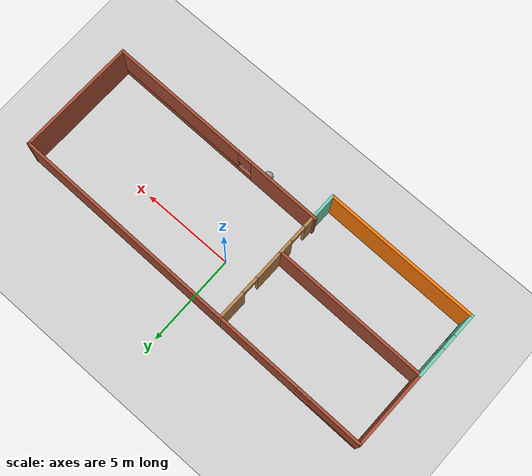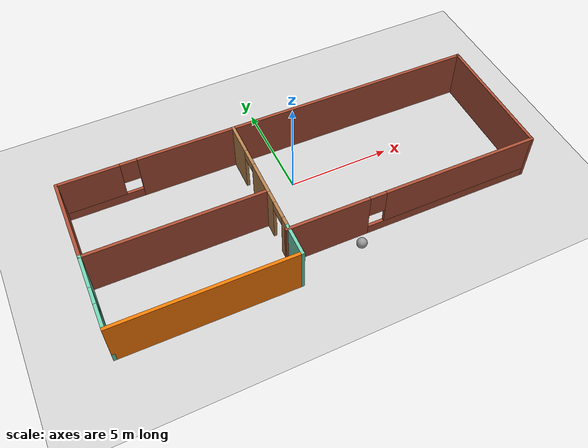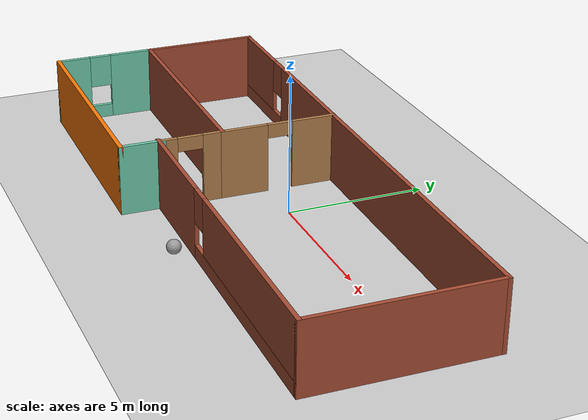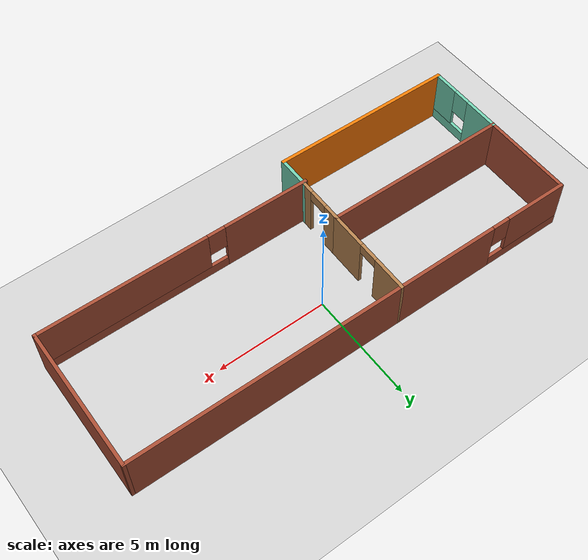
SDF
<sdf version="1.6">
 <world name="default">
  <plugin name="welcome" filename="libwelcome.so"/>
  <light name="sun" type="directional">
   <pose>0 0 10 0 -0 0</pose>
   <diffuse>0.8 0.8 0.8 1</diffuse>
   <specular>0.2 0.2 0.2 1</specular>
   <attenuation>
    <range>1000</range>
    <constant>0.9</constant>
    <linear>0.01</linear>
    <quadratic>0.001</quadratic>
   </attenuation>
   <direction>-0.5 0.1 -0.9</direction>
  </light>
  <model name="ground_plane">
   <static>1</static>
   <link name="link">
    <collision name="collision">
     <geometry><plane><normal>0 0 1</normal><size>100 100</size></plane></geometry>
     <surface><friction><ode><mu>100</mu><mu2>50</mu2></ode></friction></surface>
    </collision>
    <visual name="visual">
     <cast_shadows>0</cast_shadows>
     <geometry><plane><normal>0 0 1</normal><size>100 100</size></plane></geometry>
     <material>
      <script><uri>file://media/materials/scripts/gazebo.material</uri><name>Gazebo/Grey</name></script>
     </material>
    </visual>
   </link>
  </model>
  <gravity>0 0 -9.8</gravity>
  <magnetic_field>6e-06 2.3e-05 -4.2e-05</magnetic_field>
  <atmosphere type="adiabatic"/>
  <physics name="default_physics" default="0" type="ode">
   <max_step_size>0.001</max_step_size>
   <real_time_factor>1</real_time_factor>
   <real_time_update_rate>1000</real_time_update_rate>
  </physics>
  <scene><ambient>0.4 0.4 0.4 1</ambient><background>0.7 0.7 0.7 1</background><shadows>1</shadows></scene>
  <spherical_coordinates>
   <surface_model>EARTH_WGS84</surface_model>
   <latitude_deg>0</latitude_deg>
   <longitude_deg>0</longitude_deg>
   <elevation>0</elevation>
   <heading_deg>0</heading_deg>
  </spherical_coordinates>
  <model name="udacity_world">
   <pose>-0.007081 -1.42684 0 0 0 -0.014409</pose>
   <link name="Wall_0">
    <pose>4.125 -2.5 0 0 -0 0</pose>
    <visual name="Wall_0_Visual_0">
     <pose>-4.23936 0 1.25 0 -0 0</pose>
     <geometry><box><size>4.02128 0.15 2.5</size></box></geometry>
     <material>
      <script><uri>file://media/materials/scripts/gazebo.material</uri><name>Gazebo/Bricks</name></script>
      <ambient>1 1 1 1</ambient>
     </material>
     <meta><layer>0</layer></meta>
    </visual>
    <collision name="Wall_0_Collision_0">
     <geometry><box><size>4.02128 0.15 2.5</size></box></geometry>
     <pose>-4.23936 0 1.25 0 -0 0</pose>
    </collision>
    <visual name="Wall_0_Visual_1">
     <pose>2.01064 0 0.25 0 -0 0</pose>
     <geometry><box><size>8.47872 0.15 0.5</size></box></geometry>
     <material>
      <script><uri>file://media/materials/scripts/gazebo.material</uri><name>Gazebo/Bricks</name></script>
      <ambient>1 1 1 1</ambient>
     </material>
     <meta><layer>0</layer></meta>
    </visual>
    <collision name="Wall_0_Collision_1">
     <geometry><box><size>8.47872 0.15 0.5</size></box></geometry>
     <pose>2.01064 0 0.25 0 -0 0</pose>
    </collision>
    <visual name="Wall_0_Visual_2">
     <pose>2.41064 0 1.5 0 -0 0</pose>
     <geometry><box><size>7.67872 0.15 2</size></box></geometry>
     <material>
      <script><uri>file://media/materials/scripts/gazebo.material</uri><name>Gazebo/Bricks</name></script>
      <ambient>1 1 1 1</ambient>
     </material>
     <meta><layer>0</layer></meta>
    </visual>
    <collision name="Wall_0_Collision_2">
     <geometry><box><size>7.67872 0.15 2</size></box></geometry>
     <pose>2.41064 0 1.5 0 -0 0</pose>
    </collision>
    <visual name="Wall_0_Visual_3">
     <pose>-1.82872 0 1.9 0 -0 0</pose>
     <geometry><box><size>0.8 0.15 1.2</size></box></geometry>
     <material>
      <script><uri>file://media/materials/scripts/gazebo.material</uri><name>Gazebo/Bricks</name></script>
      <ambient>1 1 1 1</ambient>
     </material>
     <meta><layer>0</layer></meta>
    </visual>
    <collision name="Wall_0_Collision_3">
     <geometry><box><size>0.8 0.15 1.2</size></box></geometry>
     <pose>-1.82872 0 1.9 0 -0 0</pose>
    </collision>
   </link>
   <link name="Wall_1">
    <collision name="Wall_1_Collision">
     <geometry><box><size>6.5 0.15 2.5</size></box></geometry>
     <pose>0 0 1.25 0 -0 0</pose>
    </collision>
    <visual name="Wall_1_Visual">
     <pose>0 0 1.25 0 -0 0</pose>
     <geometry><box><size>6.5 0.15 2.5</size></box></geometry>
     <material>
      <script><uri>file://media/materials/scripts/gazebo.material</uri><name>Gazebo/Bricks</name></script>
      <ambient>1 1 1 1</ambient>
     </material>
     <meta><layer>0</layer></meta>
    </visual>
    <pose>10.3 0.675 0 0 -0 1.5708</pose>
   </link>
   <link name="Wall_10">
    <collision name="Wall_10_Collision">
     <geometry><box><size>8.5 0.15 2.5</size></box></geometry>
     <pose>0 0 1.25 0 -0 0</pose>
    </collision>
    <visual name="Wall_10_Visual">
     <pose>0 0 1.25 0 -0 0</pose>
     <geometry><box><size>8.5 0.15 2.5</size></box></geometry>
     <material>
      <script><uri>file://media/materials/scripts/gazebo.material</uri><name>Gazebo/Grey</name></script>
      <ambient>0.996078 0.47451 0.0196078 1</ambient>
     </material>
     <meta><layer>0</layer></meta>
    </visual>
    <pose>-6.125 -3.85 0 0 -0 0</pose>
   </link>
   <link name="Wall_11">
    <collision name="Wall_11_Collision">
     <geometry><box><size>1.65 0.15 2.5</size></box></geometry>
     <pose>0 0 1.25 0 -0 0</pose>
    </collision>
    <visual name="Wall_11_Visual">
     <pose>0 0 1.25 0 -0 0</pose>
     <geometry><box><size>1.65 0.15 2.5</size></box></geometry>
     <material>
      <script><uri>file://media/materials/scripts/gazebo.material</uri><name>Gazebo/Grey</name></script>
      <ambient>0.435294 0.796078 0.67451 1</ambient>
     </material>
     <meta><layer>0</layer></meta>
    </visual>
    <pose>-1.95 -3.1 0 0 -0 1.5708</pose>
   </link>
   <link name="Wall_2">
    <pose>0 3.85 0 0 -0 3.14159</pose>
    <visual name="Wall_2_Visual_0">
     <pose>-1.87482 0 1.25 0 -0 0</pose>
     <geometry><box><size>17.0004 0.15 2.5</size></box></geometry>
     <material>
      <script><uri>file://media/materials/scripts/gazebo.material</uri><name>Gazebo/Bricks</name></script>
      <ambient>1 1 1 1</ambient>
     </material>
     <meta><layer>0</layer></meta>
    </visual>
    <collision name="Wall_2_Collision_0">
     <geometry><box><size>17.0004 0.15 2.5</size></box></geometry>
     <pose>-1.87482 0 1.25 0 -0 0</pose>
    </collision>
    <visual name="Wall_2_Visual_1">
     <pose>8.50018 0 0.25 0 -0 0</pose>
     <geometry><box><size>3.74964 0.15 0.5</size></box></geometry>
     <material>
      <script><uri>file://media/materials/scripts/gazebo.material</uri><name>Gazebo/Bricks</name></script>
      <ambient>1 1 1 1</ambient>
     </material>
     <meta><layer>0</layer></meta>
    </visual>
    <collision name="Wall_2_Collision_1">
     <geometry><box><size>3.74964 0.15 0.5</size></box></geometry>
     <pose>8.50018 0 0.25 0 -0 0</pose>
    </collision>
    <visual name="Wall_2_Visual_2">
     <pose>8.90018 0 1.5 0 -0 0</pose>
     <geometry><box><size>2.94964 0.15 2</size></box></geometry>
     <material>
      <script><uri>file://media/materials/scripts/gazebo.material</uri><name>Gazebo/Bricks</name></script>
      <ambient>1 1 1 1</ambient>
     </material>
     <meta><layer>0</layer></meta>
    </visual>
    <collision name="Wall_2_Collision_2">
     <geometry><box><size>2.94964 0.15 2</size></box></geometry>
     <pose>8.90018 0 1.5 0 -0 0</pose>
    </collision>
    <visual name="Wall_2_Visual_3">
     <pose>7.02536 0 1.9 0 -0 0</pose>
     <geometry><box><size>0.8 0.15 1.2</size></box></geometry>
     <material>
      <script><uri>file://media/materials/scripts/gazebo.material</uri><name>Gazebo/Bricks</name></script>
      <ambient>1 1 1 1</ambient>
     </material>
     <meta><layer>0</layer></meta>
    </visual>
    <collision name="Wall_2_Collision_3">
     <geometry><box><size>0.8 0.15 1.2</size></box></geometry>
     <pose>7.02536 0 1.9 0 -0 0</pose>
    </collision>
   </link>
   <link name="Wall_3">
    <collision name="Wall_3_Collision">
     <geometry><box><size>4.25 0.15 2.5</size></box></geometry>
     <pose>0 0 1.25 0 -0 0</pose>
    </collision>
    <visual name="Wall_3_Visual">
     <pose>0 0 1.25 0 -0 0</pose>
     <geometry><box><size>4.25 0.15 2.5</size></box></geometry>
     <material>
      <script><uri>file://media/materials/scripts/gazebo.material</uri><name>Gazebo/Bricks</name></script>
      <ambient>1 1 1 1</ambient>
     </material>
     <meta><layer>0</layer></meta>
    </visual>
    <pose>-10.3 1.8 0 0 0 -1.5708</pose>
   </link>
   <link name="Wall_4">
    <collision name="Wall_4_Collision">
     <geometry><box><size>8.5 0.15 2.5</size></box></geometry>
     <pose>0 0 1.25 0 -0 0</pose>
    </collision>
    <visual name="Wall_4_Visual">
     <pose>0 0 1.25 0 -0 0</pose>
     <geometry><box><size>8.5 0.15 2.5</size></box></geometry>
     <material>
      <script><uri>file://media/materials/scripts/gazebo.material</uri><name>Gazebo/Bricks</name></script>
      <ambient>1 1 1 1</ambient>
     </material>
     <meta><layer>0</layer></meta>
    </visual>
    <pose>-6.125 -0.25 0 0 -0 0</pose>
   </link>
   <link name="Wall_5">
    <pose>-1.95 -1.3 0 0 0 -1.5708</pose>
    <visual name="Wall_5_Visual_0">
     <pose>-0.729519 0 1.25 0 -0 0</pose>
     <geometry><box><size>0.790962 0.15 2.5</size></box></geometry>
     <material>
      <script><uri>file://media/materials/scripts/gazebo.material</uri><name>Gazebo/Wood</name></script>
      <ambient>0.435294 0.796078 0.67451 1</ambient>
     </material>
     <meta><layer>0</layer></meta>
    </visual>
    <collision name="Wall_5_Collision_0">
     <geometry><box><size>0.790962 0.15 2.5</size></box></geometry>
     <pose>-0.729519 0 1.25 0 -0 0</pose>
    </collision>
    <visual name="Wall_5_Visual_1">
     <pose>0.845481 0 1.25 0 -0 0</pose>
     <geometry><box><size>0.559038 0.15 2.5</size></box></geometry>
     <material>
      <script><uri>file://media/materials/scripts/gazebo.material</uri><name>Gazebo/Wood</name></script>
      <ambient>0.435294 0.796078 0.67451 1</ambient>
     </material>
     <meta><layer>0</layer></meta>
    </visual>
    <collision name="Wall_5_Collision_1">
     <geometry><box><size>0.559038 0.15 2.5</size></box></geometry>
     <pose>0.845481 0 1.25 0 -0 0</pose>
    </collision>
    <visual name="Wall_5_Visual_2">
     <pose>0.115962 0 2.25 0 -0 0</pose>
     <geometry><box><size>0.9 0.15 0.5</size></box></geometry>
     <material>
      <script><uri>file://media/materials/scripts/gazebo.material</uri><name>Gazebo/Wood</name></script>
      <ambient>0.435294 0.796078 0.67451 1</ambient>
     </material>
     <meta><layer>0</layer></meta>
    </visual>
    <collision name="Wall_5_Collision_2">
     <geometry><box><size>0.9 0.15 0.5</size></box></geometry>
     <pose>0.115962 0 2.25 0 -0 0</pose>
    </collision>
   </link>
   <link name="Wall_7">
    <pose>-1.95 1.8 0 0 -0 1.5708</pose>
    <visual name="Wall_7_Visual_0">
     <pose>-1.26477 0 1.25 0 -0 0</pose>
     <geometry><box><size>1.72045 0.15 2.5</size></box></geometry>
     <material>
      <script><uri>file://media/materials/scripts/gazebo.material</uri><name>Gazebo/Wood</name></script>
      <ambient>0.435294 0.796078 0.67451 1</ambient>
     </material>
     <meta><layer>0</layer></meta>
    </visual>
    <collision name="Wall_7_Collision_0">
     <geometry><box><size>1.72045 0.15 2.5</size></box></geometry>
     <pose>-1.26477 0 1.25 0 -0 0</pose>
    </collision>
    <visual name="Wall_7_Visual_1">
     <pose>1.31023 0 1.25 0 -0 0</pose>
     <geometry><box><size>1.62955 0.15 2.5</size></box></geometry>
     <material>
      <script><uri>file://media/materials/scripts/gazebo.material</uri><name>Gazebo/Wood</name></script>
      <ambient>0.435294 0.796078 0.67451 1</ambient>
     </material>
     <meta><layer>0</layer></meta>
    </visual>
    <collision name="Wall_7_Collision_1">
     <geometry><box><size>1.62955 0.15 2.5</size></box></geometry>
     <pose>1.31023 0 1.25 0 -0 0</pose>
    </collision>
    <visual name="Wall_7_Visual_2">
     <pose>0.045453 0 2.25 0 -0 0</pose>
     <geometry><box><size>0.9 0.15 0.5</size></box></geometry>
     <material>
      <script><uri>file://media/materials/scripts/gazebo.material</uri><name>Gazebo/Wood</name></script>
      <ambient>0.435294 0.796078 0.67451 1</ambient>
     </material>
     <meta><layer>0</layer></meta>
    </visual>
    <collision name="Wall_7_Collision_2">
     <geometry><box><size>0.9 0.15 0.5</size></box></geometry>
     <pose>0.045453 0 2.25 0 -0 0</pose>
    </collision>
   </link>
   <link name="Wall_9">
    <pose>-10.3 -2.05 0 0 0 -1.5708</pose>
    <visual name="Wall_9_Visual_0">
     <pose>-1.03817 0 1.25 0 -0 0</pose>
     <geometry><box><size>1.67366 0.15 2.5</size></box></geometry>
     <material>
      <script><uri>file://media/materials/scripts/gazebo.material</uri><name>Gazebo/Grey</name></script>
      <ambient>0.435294 0.796078 0.67451 1</ambient>
     </material>
     <meta><layer>0</layer></meta>
    </visual>
    <collision name="Wall_9_Collision_0">
     <geometry><box><size>1.67366 0.15 2.5</size></box></geometry>
     <pose>-1.03817 0 1.25 0 -0 0</pose>
    </collision>
    <visual name="Wall_9_Visual_1">
     <pose>0.836832 0 0.25 0 -0 0</pose>
     <geometry><box><size>2.07634 0.15 0.5</size></box></geometry>
     <material>
      <script><uri>file://media/materials/scripts/gazebo.material</uri><name>Gazebo/Grey</name></script>
      <ambient>0.435294 0.796078 0.67451 1</ambient>
     </material>
     <meta><layer>0</layer></meta>
    </visual>
    <collision name="Wall_9_Collision_1">
     <geometry><box><size>2.07634 0.15 0.5</size></box></geometry>
     <pose>0.836832 0 0.25 0 -0 0</pose>
    </collision>
    <visual name="Wall_9_Visual_2">
     <pose>1.23683 0 1.5 0 -0 0</pose>
     <geometry><box><size>1.27634 0.15 2</size></box></geometry>
     <material>
      <script><uri>file://media/materials/scripts/gazebo.material</uri><name>Gazebo/Grey</name></script>
      <ambient>0.435294 0.796078 0.67451 1</ambient>
     </material>
     <meta><layer>0</layer></meta>
    </visual>
    <collision name="Wall_9_Collision_2">
     <geometry><box><size>1.27634 0.15 2</size></box></geometry>
     <pose>1.23683 0 1.5 0 -0 0</pose>
    </collision>
    <visual name="Wall_9_Visual_3">
     <pose>0.198664 0 1.9 0 -0 0</pose>
     <geometry><box><size>0.8 0.15 1.2</size></box></geometry>
     <material>
      <script><uri>file://media/materials/scripts/gazebo.material</uri><name>Gazebo/Grey</name></script>
      <ambient>0.435294 0.796078 0.67451 1</ambient>
     </material>
     <meta><layer>0</layer></meta>
    </visual>
    <collision name="Wall_9_Collision_3">
     <geometry><box><size>0.8 0.15 1.2</size></box></geometry>
     <pose>0.198664 0 1.9 0 -0 0</pose>
    </collision>
   </link>
   <static>1</static>
  </model>
  <model name="white_ball">
   <link name="link_0">
    <inertial>
     <mass>1</mass>
     <inertia><ixx>0.1</ixx><ixy>0</ixy><ixz>0</ixz><iyy>0.1</iyy><iyz>0</iyz><izz>0.1</izz></inertia>
    </inertial>
    <visual name="visual">
     <geometry><sphere><radius>0.25</radius></sphere></geometry>
     <material>
      <lighting>1</lighting>
      <script><uri>file://media/materials/scripts/gazebo.material</uri><name>Gazebo/Grey</name></script>
      <shader type="pixel"><normal_map>__default__</normal_map></shader>
      <ambient>1 1 1 1</ambient>
      <diffuse>1 1 1 1</diffuse>
      <specular>1 1 1 1</specular>
      <emissive>1 1 1 1</emissive>
     </material>
    </visual>
    <collision name="collision">
     <geometry><sphere><radius>0.25</radius></sphere></geometry>
     <surface>
      <friction>
       <ode><mu>1</mu><mu2>1</mu2><fdir1>0 0 0</fdir1><slip1>0</slip1><slip2>0</slip2></ode>
       <torsional>
        <coefficient>1</coefficient>
        <patch_radius>0</patch_radius>
        <surface_radius>0</surface_radius>
        <use_patch_radius>1</use_patch_radius>
        <ode><slip>0</slip></ode>
       </torsional>
      </friction>
      <bounce><restitution_coefficient>0</restitution_coefficient><threshold>1e+06</threshold></bounce>
      <contact>
       <collide_without_contact>0</collide_without_contact>
       <collide_without_contact_bitmask>1</collide_without_contact_bitmask>
       <collide_bitmask>1</collide_bitmask>
       <ode>
        <soft_cfm>0</soft_cfm>
        <soft_erp>0.2</soft_erp>
        <kp>1e+13</kp>
        <kd>1</kd>
        <max_vel>0.01</max_vel>
        <min_depth>0</min_depth>
       </ode>
       <bullet>
        <split_impulse>1</split_impulse>
        <split_impulse_penetration_threshold>-0.01</split_impulse_penetration_threshold>
        <soft_cfm>0</soft_cfm>
        <soft_erp>0.2</soft_erp>
        <kp>1e+13</kp>
        <kd>1</kd>
       </bullet>
      </contact>
     </surface>
    </collision>
   </link>
   <static>0</static>
   <pose>1.28354 -4.54652 0.25 0 -0 0</pose>
  </model>
 </world>
</sdf>
